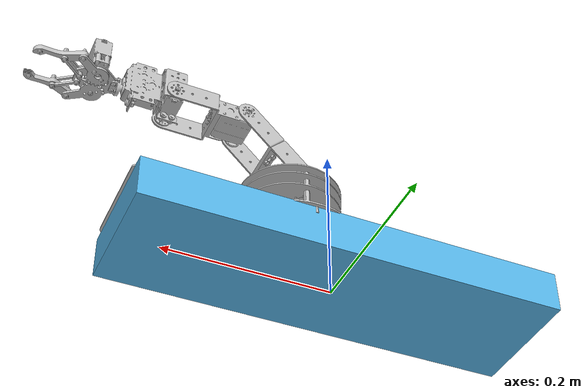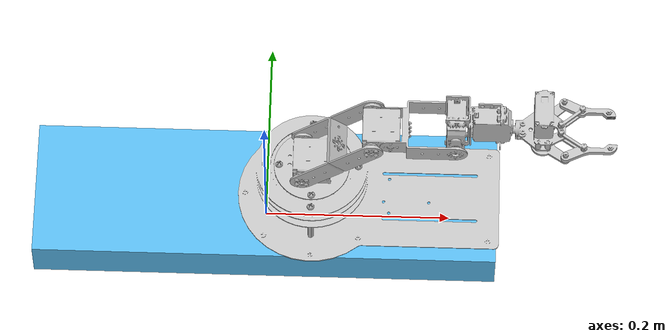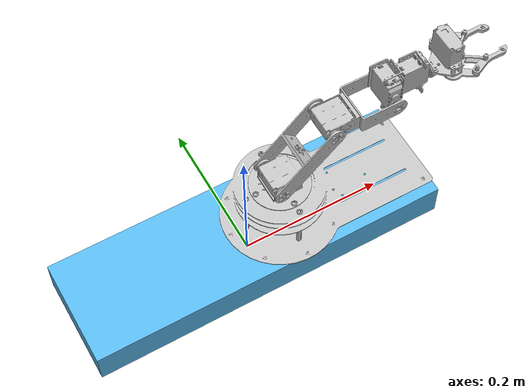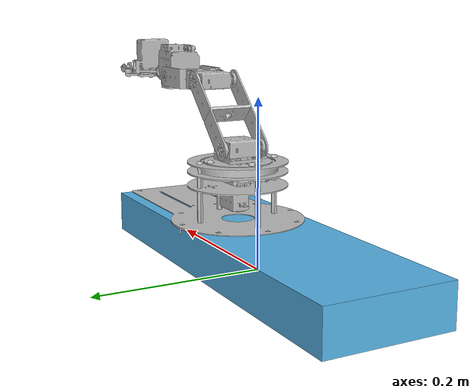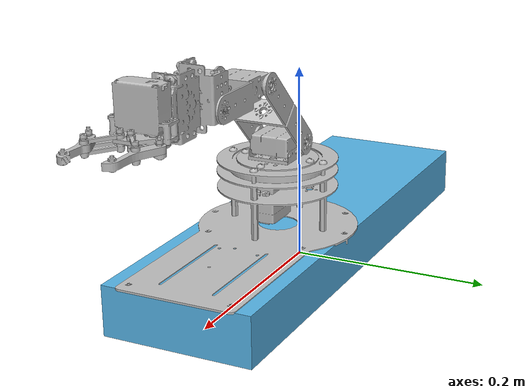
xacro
<?xml version="1.0" ?>

<robot name="le_arm" xmlns:xacro="http://ros.org/wiki/xacro">
    <xacro:include filename="$(find le_arm)/urdf/le_arm.urdf.xacro" />

    <gazebo>
        <plugin name="gazebo_ros_control" filename="libgazebo_ros_control.so">
            <robotNamespace>/</robotNamespace>
        </plugin>
    </gazebo>

    <link name="world"/>
    <joint name="world_fixed" type="fixed">
        <origin xyz="0 0 0" rpy="0 0 0"/>
        <parent link="world"/>
        <child link="root_link"/>
    </joint>

    <link name="root_link">
        <visual>
            <origin xyz="0 0 0.025" rpy="0 0 0"/>
            <geometry>
                <box size="0.5 0.15 0.05"/>
            </geometry>
        </visual>
        <collision>
            <origin xyz="0 0 0.025" rpy="0 0 0"/>
            <geometry>
                <box size="0.5 0.15 0.05"/>
            </geometry>
        </collision>
        <inertial>
            <mass value="0.01" />
            <origin xyz="0.0 0.0 0.0" />
            <inertia ixx = "0.000001" ixy = "0.000000" ixz = "0.000000"
                     iyx = "0.000000" iyy = "0.000001" iyz = "0.000000"
                     izx = "0.000000" izy = "0.000000" izz = "0.000001" />
        </inertial>
    </link>

    <xacro:le_arm parent="root_link" >
        <origin xyz="0.05 0 0.051" rpy="0 0 0"/>
    </xacro:le_arm>
</robot>

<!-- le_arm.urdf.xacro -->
<robot xmlns:xacro="http://ros.org/wiki/xacro">
    <xacro:include filename="$(find le_arm)/urdf/le_arm.transmission.xacro" />
    <xacro:include filename="$(find le_arm)/urdf/le_arm_gripper.urdf.xacro" />
    <xacro:macro name="le_arm" params="parent *origin">
        <joint name="arm_base_joint" type="fixed">
            <parent link="${parent}"/>
            <child link="arm_base_link"/>
            <xacro:insert_block name="origin"/>
        </joint>

        <link
            name="arm_base_link">
            <inertial>
            <origin
                xyz="0.034411 3.2244E-06 0.02029"
                rpy="0 0 0" />
            <mass value="0.00001" />
            <inertia ixx="0.001" ixy="0.0" ixz="0.0" iyy="0.001" iyz="0.0" izz="0.001" />
            </inertial>
            <visual>
            <origin
                xyz="0 0 0"
                rpy="0 0 0" />
            <geometry>
                <mesh
                filename="file:///home/robin/le_arm_ws/src/le_arm/meshes/arm/base_link.STL" />
            </geometry>
            <material
                name="">
                <color
                rgba="0.75294 0.75294 0.75294 1" />
            </material>
            </visual>
            <collision>
            <origin
                xyz="0 0 0"
                rpy="0 0 0" />
            <geometry>
                <mesh
                filename="file:///home/robin/le_arm_ws/src/le_arm/meshes/arm/base_link.STL" />
            </geometry>
            </collision>
        </link>

        <gazebo reference="arm_base_link">
            <implicitSpringDamper>1</implicitSpringDamper>
            <mu1>100000</mu1>
            <mu2>100000</mu2>
            <kp>100000000.0</kp>
            <kd>1.0</kd>
        </gazebo>

        <link
            name="shoulder_link">
            <inertial>
            <origin
                xyz="-0.0005946 -0.00090913 0.017195"
                rpy="0 0 0" />
            <mass value="0.00001" />
            <inertia ixx="0.001" ixy="0.0" ixz="0.0" iyy="0.001" iyz="0.0" izz="0.001" />
            </inertial>
            <visual>
            <origin
                xyz="0 0 0"
                rpy="0 0 0" />
            <geometry>
                <mesh
                filename="file:///home/robin/le_arm_ws/src/le_arm/meshes/arm/shoulder_link.STL" />
            </geometry>
            <material
                name="">
                <color
                rgba="0.75294 0.75294 0.75294 1" />
            </material>
            </visual>
            <collision>
            <origin
                xyz="0 0 0"
                rpy="0 0 0" />
            <geometry>
                <mesh
                filename="file:///home/robin/le_arm_ws/src/le_arm/meshes/arm/shoulder_link.STL" />
            </geometry>
            </collision>
        </link>

        <gazebo reference="shoulder_link">
            <implicitSpringDamper>1</implicitSpringDamper>
            <mu1>100000</mu1>
            <mu2>100000</mu2>
            <kp>100000000.0</kp>
            <kd>1.0</kd>
        </gazebo>

        <joint
            name="shoulder_pan_joint"
            type="revolute">
            <origin
            xyz="0.0005 0 0.0535"
            rpy="1.2297E-10 2.2825E-27 -3.4694E-17" />
            <parent
            link="arm_base_link" />
            <child
            link="shoulder_link" />
            <axis
            xyz="0 0 1" />
            <limit
            lower="-1.57"
            upper="1.57"
            effort="1000"
            velocity="2" />
        </joint>
        <link
            name="upper_arm_link">
            <inertial>
            <origin
                xyz="2.6345E-08 -0.02405 0.05197"
                rpy="0 0 0" />
            <mass value="0.00001" />
            <inertia ixx="0.001" ixy="0.0" ixz="0.0" iyy="0.001" iyz="0.0" izz="0.001" />
            </inertial>
            <visual>
            <origin
                xyz="0 0 0"
                rpy="0 0 0" />
            <geometry>
                <mesh
                filename="file:///home/robin/le_arm_ws/src/le_arm/meshes/arm/upper_arm_link.STL" />
            </geometry>
            <material
                name="">
                <color
                rgba="0.75294 0.75294 0.75294 1" />
            </material>
            </visual>
            <collision>
            <origin
                xyz="0 0 0"
                rpy="0 0 0" />
            <geometry>
                <mesh
                filename="file:///home/robin/le_arm_ws/src/le_arm/meshes/arm/upper_arm_link.STL" />
            </geometry>
            </collision>
        </link>

        <gazebo reference="upper_arm_link">
            <implicitSpringDamper>1</implicitSpringDamper>
            <mu1>100000</mu1>
            <mu2>100000</mu2>
            <kp>100000000.0</kp>
            <kd>1.0</kd>
        </gazebo>

        <joint
            name="shoulder_lift_joint"
            type="revolute">
            <origin
            xyz="-0.0105 0.0226 0.032"
            rpy="-5.7183E-11 0.785 0" />
            <parent
            link="shoulder_link" />
            <child
            link="upper_arm_link" />
            <axis
            xyz="0 -1 0" />
            <limit
            lower="-1.57"
            upper="1.57"
            effort="1000"
            velocity="2" />
        </joint>
        <link
            name="forearm_link">
            <inertial>
            <origin
                xyz="3.5006E-08 0.0090395 0.033861"
                rpy="0 0 0" />
            <mass value="0.00001" />
            <inertia ixx="0.001" ixy="0.0" ixz="0.0" iyy="0.001" iyz="0.0" izz="0.001" />
            </inertial>
            <visual>
            <origin
                xyz="0 0 0"
                rpy="0 0 0" />
            <geometry>
                <mesh
                filename="file:///home/robin/le_arm_ws/src/le_arm/meshes/arm/forearm_link.STL" />
            </geometry>
            <material
                name="">
                <color
                rgba="0.75294 0.75294 0.75294 1" />
            </material>
            </visual>
            <collision>
            <origin
                xyz="0 0 0"
                rpy="0 0 0" />
            <geometry>
                <mesh
                filename="file:///home/robin/le_arm_ws/src/le_arm/meshes/arm/forearm_link.STL" />
            </geometry>
            </collision>
        </link>

        <gazebo reference="forearm_link">
            <implicitSpringDamper>1</implicitSpringDamper>
            <mu1>100000</mu1>
            <mu2>100000</mu2>
            <kp>100000000.0</kp>
            <kd>1.0</kd>
        </gazebo>

        <joint
            name="elbow_joint"
            type="revolute">
            <origin
            xyz="0 -0.0335 0.104"
            rpy="-1.6E-10 0.785 0" />
            <parent
            link="upper_arm_link" />
            <child
            link="forearm_link" />
            <axis
            xyz="0 -1 0" />
            <limit
            lower="-1.57"
            upper="1.57"
            effort="1000"
            velocity="2" />
        </joint>
        <link
            name="wrist_1_link">
            <inertial>
            <origin
                xyz="-0.010432 0.010212 0.019017"
                rpy="0 0 0" />
            <mass value="0.00001" />
            <inertia ixx="0.001" ixy="0.0" ixz="0.0" iyy="0.001" iyz="0.0" izz="0.001" />
            </inertial>
            <visual>
            <origin
                xyz="0 0 0"
                rpy="0 0 0" />
            <geometry>
                <mesh
                filename="file:///home/robin/le_arm_ws/src/le_arm/meshes/arm/wrist_1_link.STL" />
            </geometry>
            <material
                name="">
                <color
                rgba="0.75294 0.75294 0.75294 1" />
            </material>
            </visual>
            <collision>
            <origin
                xyz="0 0 0"
                rpy="0 0 0" />
            <geometry>
                <mesh
                filename="file:///home/robin/le_arm_ws/src/le_arm/meshes/arm/wrist_1_link.STL" />
            </geometry>
            </collision>
        </link>

         <gazebo reference="wrist_1_link">
            <implicitSpringDamper>1</implicitSpringDamper>
            <mu1>100000</mu1>
            <mu2>100000</mu2>
            <kp>100000000.0</kp>
            <kd>1.0</kd>
        </gazebo>

        <joint
            name="wrist_1_joint"
            type="revolute">
            <origin
            xyz="-0.0007415 0.0054 0.088419"
            rpy="5.3884E-11 0 0" />
            <parent
            link="forearm_link" />
            <child
            link="wrist_1_link" />
            <axis
            xyz="0 -1 0" />
            <limit
            lower="-1.57"
            upper="1.57"
            effort="1000"
            velocity="2" />
        </joint>

        <xacro:le_arm_gripper prefix="" parent="wrist_1_link" >
            <origin xyz="0 0.009 0.059" rpy="0 0 0"/>
        </xacro:le_arm_gripper>

        <xacro:le_arm_transmission prefix=""/>

    </xacro:macro>
</robot>

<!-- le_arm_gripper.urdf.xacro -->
<robot xmlns:xacro="http://ros.org/wiki/xacro">
<xacro:include filename="$(find le_arm)/urdf/le_arm_gripper.transmission.xacro" />
    <xacro:macro name="le_arm_gripper" params="prefix parent *origin">

        <joint  name="${prefix}wrist_2_joint" type="revolute">
            <xacro:insert_block name="origin"/>
            <parent link="${parent}"/>
            <child link="${prefix}gripper_base_link"/>
            <axis  xyz="0 0 1" />
            <limit lower="-1.57"  upper="1.57" effort="1000" velocity="2" />
        </joint>

        <link
            name="gripper_base_link">
            <inertial>
            <origin
                xyz="-0.016093 0.0024206 0.03061"
                rpy="0 0 0" />
            <mass value="0.00001" />
            <inertia ixx="0.001" ixy="0.0" ixz="0.0" iyy="0.001" iyz="0.0" izz="0.001" />
            </inertial>
            <visual>
            <origin
                xyz="0 0 0"
                rpy="0 0 0" />
            <geometry>
                <mesh
                filename="file:///home/robin/le_arm_ws/src/le_arm/meshes/gripper/base_link.STL" />
            </geometry>
            <material
                name="">
                <color
                rgba="0.75294 0.75294 0.75294 1" />
            </material>
            </visual>
            <collision>
            <origin
                xyz="0 0 0"
                rpy="0 0 0" />
            <geometry>
                <mesh
                filename="file:///home/robin/le_arm_ws/src/le_arm/meshes/gripper/base_link.STL" />
            </geometry>
            </collision>
        </link>

        <gazebo reference="${prefix}gripper_base_link">
            <implicitSpringDamper>1</implicitSpringDamper>
            <mu1>100000</mu1>
            <mu2>100000</mu2>
            <kp>100000000.0</kp>
            <kd>1.0</kd>
        </gazebo>

        <link
            name="left_knuckle_link">
            <inertial>
            <origin
                xyz="0.0004174 0.0081181 0.00092142"
                rpy="0 0 0" />
            <mass value="0.00001" />
            <inertia ixx="0.001" ixy="0.0" ixz="0.0" iyy="0.001" iyz="0.0" izz="0.001" />
            </inertial>
            <visual>
            <origin
                xyz="0 0 0"
                rpy="0 0 0" />
            <geometry>
                <mesh
                filename="file:///home/robin/le_arm_ws/src/le_arm/meshes/gripper/left_knuckle_link.STL" />
            </geometry>
            <material
                name="">
                <color
                rgba="0.75294 0.75294 0.75294 1" />
            </material>
            </visual>
            <collision>
            <origin
                xyz="0 0 0"
                rpy="0 0 0" />
            <geometry>
                <mesh
                filename="file:///home/robin/le_arm_ws/src/le_arm/meshes/gripper/left_knuckle_link.STL" />
            </geometry>
            </collision>
        </link>

        <gazebo reference="${prefix}left_knuckle_link">
            <implicitSpringDamper>1</implicitSpringDamper>
            <mu1>100000</mu1>
            <mu2>100000</mu2>
            <kp>100000000.0</kp>
            <kd>1.0</kd>
        </gazebo>

        <joint
            name="left_knuckle_joint"
            type="revolute">
            <origin
            xyz="0.0045 -0.014 0.0325"
            rpy="1.5708 -0.59692 1.5708" />
            <parent
            link="gripper_base_link" />
            <child
            link="left_knuckle_link" />
            <axis
            xyz="0 0 1" />
            <limit
            lower="-1.57"
            upper="1.57"
            effort="1000"
            velocity="2.0" />
        </joint>
        <link
            name="right_knuckle_link">
            <inertial>
            <origin
                xyz="0.00045059 0.0080041 0.0020288"
                rpy="0 0 0" />
            <mass value="0.00001" />
            <inertia ixx="0.001" ixy="0.0" ixz="0.0" iyy="0.001" iyz="0.0" izz="0.001" />
            </inertial>
            <visual>
            <origin
                xyz="0 0 0"
                rpy="0 0 0" />
            <geometry>
                <mesh
                filename="file:///home/robin/le_arm_ws/src/le_arm/meshes/gripper/right_knuckle_link.STL" />
            </geometry>
            <material
                name="">
                <color
                rgba="0.75294 0.75294 0.75294 1" />
            </material>
            </visual>
            <collision>
            <origin
                xyz="0 0 0"
                rpy="0 0 0" />
            <geometry>
                <mesh
                filename="file:///home/robin/le_arm_ws/src/le_arm/meshes/gripper/right_knuckle_link.STL" />
            </geometry>
            </collision>
        </link>

        <gazebo reference="${prefix}right_knuckle_link">
            <implicitSpringDamper>1</implicitSpringDamper>
            <mu1>100000</mu1>
            <mu2>100000</mu2>
            <kp>100000000.0</kp>
            <kd>1.0</kd>
        </gazebo>

        <joint
            name="right_knuckle_joint"
            type="revolute">
            <origin
            xyz="0.0075 0.014 0.0325"
            rpy="1.5708 -0.69513 -1.5708" />
            <parent
            link="gripper_base_link" />
            <child
            link="right_knuckle_link" />
            <axis
            xyz="0 0 -1" />
            <limit
            lower="-1.57"
            upper="1.57"
            effort="1000"
            velocity="2.0" />
            <mimic joint="${prefix}left_knuckle_joint" multiplier="-1"/>
        </joint>
        <link
            name="left_inner_knuckle_link">
            <inertial>
            <origin
                xyz="-0.013801 1.3512E-10 -0.0091952"
                rpy="0 0 0" />
            <mass value="0.00001" />
            <inertia ixx="0.001" ixy="0.0" ixz="0.0" iyy="0.001" iyz="0.0" izz="0.001" />
            </inertial>
            <visual>
            <origin
                xyz="0 0 0"
                rpy="0 0 0" />
            <geometry>
                <mesh
                filename="file:///home/robin/le_arm_ws/src/le_arm/meshes/gripper/left_inner_knuckle_link.STL" />
            </geometry>
            <material
                name="">
                <color
                rgba="0.75294 0.75294 0.75294 1" />
            </material>
            </visual>
            <collision>
            <origin
                xyz="0 0 0"
                rpy="0 0 0" />
            <geometry>
                <mesh
                filename="file:///home/robin/le_arm_ws/src/le_arm/meshes/gripper/left_inner_knuckle_link.STL" />
            </geometry>
            </collision>
        </link>

        <gazebo reference="${prefix}left_inner_knuckle_link">
            <implicitSpringDamper>1</implicitSpringDamper>
            <mu1>100000</mu1>
            <mu2>100000</mu2>
            <kp>100000000.0</kp>
            <kd>1.0</kd>
        </gazebo>

        <joint
            name="left_inner_knuckle_joint"
            type="revolute">
            <origin
            xyz="0.0099 -0.005 0.051474"
            rpy="1.5708 0.97387 1.5708" />
            <parent
            link="gripper_base_link" />
            <child
            link="left_inner_knuckle_link" />
            <axis
            xyz="0 0 1" />
            <limit
            lower="-1.57"
            upper="1.57"
            effort="1000"
            velocity="2.0" />
            <mimic joint="${prefix}left_knuckle_joint" multiplier="1"/>
        </joint>
        <link
            name="left_finger_link">
            <inertial>
            <origin
                xyz="-0.0038459 0.0027734 -5.6082E-05"
                rpy="0 0 0" />
            <mass value="0.00001" />
            <inertia ixx="0.001" ixy="0.0" ixz="0.0" iyy="0.001" iyz="0.0" izz="0.001" />
            </inertial>
            <visual>
            <origin
                xyz="0 0 0"
                rpy="0 0 0" />
            <geometry>
                <mesh
                filename="file:///home/robin/le_arm_ws/src/le_arm/meshes/gripper/left_finger_link.STL" />
            </geometry>
            <material
                name="">
                <color
                rgba="0.75294 0.75294 0.75294 1" />
            </material>
            </visual>
            <collision>
            <origin
                xyz="0 0 0"
                rpy="0 0 0" />
            <geometry>
                <mesh
                filename="file:///home/robin/le_arm_ws/src/le_arm/meshes/gripper/left_finger_link.STL" />
            </geometry>
            </collision>
        </link>

        <gazebo reference="${prefix}left_finger_link">
            <implicitSpringDamper>1</implicitSpringDamper>
            <mu1>100000</mu1>
            <mu2>100000</mu2>
            <kp>100000000.0</kp>
            <kd>1.0</kd>
        </gazebo>

        <joint
            name="left_finger_joint"
            type="revolute">
            <origin
            xyz="-0.029 0 -0.0084"
            rpy="9.0533E-10 -1.7902E-09 0.53096" />
            <parent
            link="left_inner_knuckle_link" />
            <child
            link="left_finger_link" />
            <axis
            xyz="0 0 1" />
            <limit
            lower="-1.57"
            upper="1.57"
            effort="1000"
            velocity="2.0" />
            <mimic joint="${prefix}left_knuckle_joint" multiplier="-1"/>
        </joint>
        <link
            name="right_inner_knuckle_link">
            <inertial>
            <origin
                xyz="-0.013801 4.8285E-11 0.0069248"
                rpy="0 0 0" />
            <mass value="0.00001" />
            <inertia ixx="0.001" ixy="0.0" ixz="0.0" iyy="0.001" iyz="0.0" izz="0.001" />
            </inertial>
            <visual>
            <origin
                xyz="0 0 0"
                rpy="0 0 0" />
            <geometry>
                <mesh
                filename="file:///home/robin/le_arm_ws/src/le_arm/meshes/gripper/right_inner_knuckle_link.STL" />
            </geometry>
            <material
                name="">
                <color
                rgba="0.75294 0.75294 0.75294 1" />
            </material>
            </visual>
            <collision>
            <origin
                xyz="0 0 0"
                rpy="0 0 0" />
            <geometry>
                <mesh
                filename="file:///home/robin/le_arm_ws/src/le_arm/meshes/gripper/right_inner_knuckle_link.STL" />
            </geometry>
            </collision>
        </link>

        <gazebo reference="${prefix}right_inner_knuckle_link">
            <implicitSpringDamper>1</implicitSpringDamper>
            <mu1>100000</mu1>
            <mu2>100000</mu2>
            <kp>100000000.0</kp>
            <kd>1.0</kd>
        </gazebo>

        <joint
            name="right_inner_knuckle_joint"
            type="revolute">
            <origin
            xyz="-0.00622 0.005 0.051474"
            rpy="-1.5708 0.87566 -1.5708" />
            <parent
            link="gripper_base_link" />
            <child
            link="right_inner_knuckle_link" />
            <axis
            xyz="0 0 1" />
            <limit
            lower="-1.57"
            upper="1.57"
            effort="1000"
            velocity="2.0" />
            <mimic joint="${prefix}left_knuckle_joint" multiplier="-1"/>
        </joint>
        <link
            name="right_finger_link">
            <inertial>
            <origin
                xyz="-0.0038459 0.0027734 0.0030561"
                rpy="0 0 0" />
            <mass value="0.00001" />
            <inertia ixx="0.001" ixy="0.0" ixz="0.0" iyy="0.001" iyz="0.0" izz="0.001" />
            </inertial>
            <visual>
            <origin
                xyz="0 0 0"
                rpy="0 0 0" />
            <geometry>
                <mesh
                filename="file:///home/robin/le_arm_ws/src/le_arm/meshes/gripper/right_finger_link.STL" />
            </geometry>
            <material
                name="">
                <color
                rgba="0.75294 0.75294 0.75294 1" />
            </material>
            </visual>
            <collision>
            <origin
                xyz="0 0 0"
                rpy="0 0 0" />
            <geometry>
                <mesh
                filename="file:///home/robin/le_arm_ws/src/le_arm/meshes/gripper/right_finger_link.STL" />
            </geometry>
            </collision>
        </link>

        <gazebo reference="${prefix}right_finger_link">
            <implicitSpringDamper>1</implicitSpringDamper>
            <mu1>100000</mu1>
            <mu2>100000</mu2>
            <kp>100000000.0</kp>
            <kd>1.0</kd>
        </gazebo>

        <joint
            name="right_finger_joint"
            type="revolute">
            <origin
            xyz="-0.029 0 0.01072"
            rpy="-3.1416 1.7902E-09 -0.43275" />
            <parent
            link="right_inner_knuckle_link" />
            <child
            link="right_finger_link" />
            <axis
            xyz="0 0 -1" />
            <limit
            lower="-1.57"
            upper="1.57"
            effort="1000"
            velocity="2.0" />
            <mimic joint="${prefix}left_knuckle_joint" multiplier="1"/>
        </joint>

        <xacro:le_arm_gripper_transmission prefix="${prefix}"/>

    </xacro:macro>
</robot>
